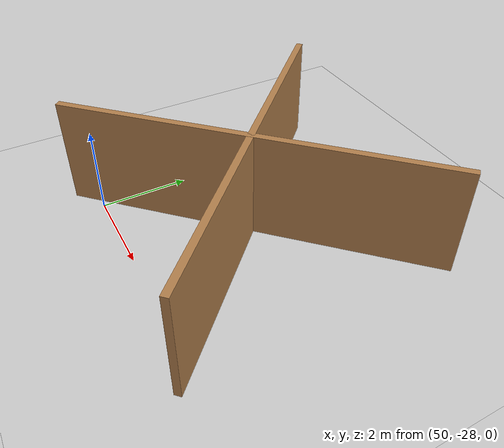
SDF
<sdf version="1.6">
 <world name="default">
  <model name="ground_plane">
   <static>1</static>
   <link name="link">
    <collision name="collision">
     <geometry><plane><normal>0 0 1</normal><size>100 100</size></plane></geometry>
     <surface><friction><ode><mu>100</mu><mu2>50</mu2></ode></friction></surface>
    </collision>
    <visual name="visual">
     <cast_shadows>0</cast_shadows>
     <geometry><plane><normal>0 0 1</normal><size>100 100</size></plane></geometry>
     <material>
      <script><uri>file://media/materials/scripts/gazebo.material</uri><name>Gazebo/Grey</name></script>
     </material>
    </visual>
   </link>
  </model>
  <model name="obs3_5">
   <pose>52.3107 -25.3561 0 0 -0 0</pose>
   <link name="Wall_0">
    <collision name="Wall_0_Collision">
     <geometry><box><size>8.63528 0.15 2.5</size></box></geometry>
     <pose>0 0 1.25 0 -0 0</pose>
    </collision>
    <visual name="Wall_0_Visual">
     <pose>0 0 1.25 0 -0 0</pose>
     <geometry><box><size>8.63528 0.15 2.5</size></box></geometry>
     <material>
      <script><uri>file://media/materials/scripts/gazebo.material</uri><name>Gazebo/Wood</name></script>
      <ambient>1 1 1 1</ambient>
     </material>
    </visual>
    <pose>0 0 0 0 0 -0.785398</pose>
   </link>
   <link name="Wall_2">
    <collision name="Wall_2_Collision">
     <geometry><box><size>8.63528 0.15 2.5</size></box></geometry>
     <pose>0 0 1.25 0 -0 0</pose>
    </collision>
    <visual name="Wall_2_Visual">
     <pose>0 0 1.25 0 -0 0</pose>
     <geometry><box><size>8.63528 0.15 2.5</size></box></geometry>
     <material>
      <script><uri>file://media/materials/scripts/gazebo.material</uri><name>Gazebo/Wood</name></script>
      <ambient>1 1 1 1</ambient>
     </material>
    </visual>
    <pose>0 0 0 0 0 -2.35619</pose>
   </link>
   <static>1</static>
  </model>
 </world>
</sdf>
